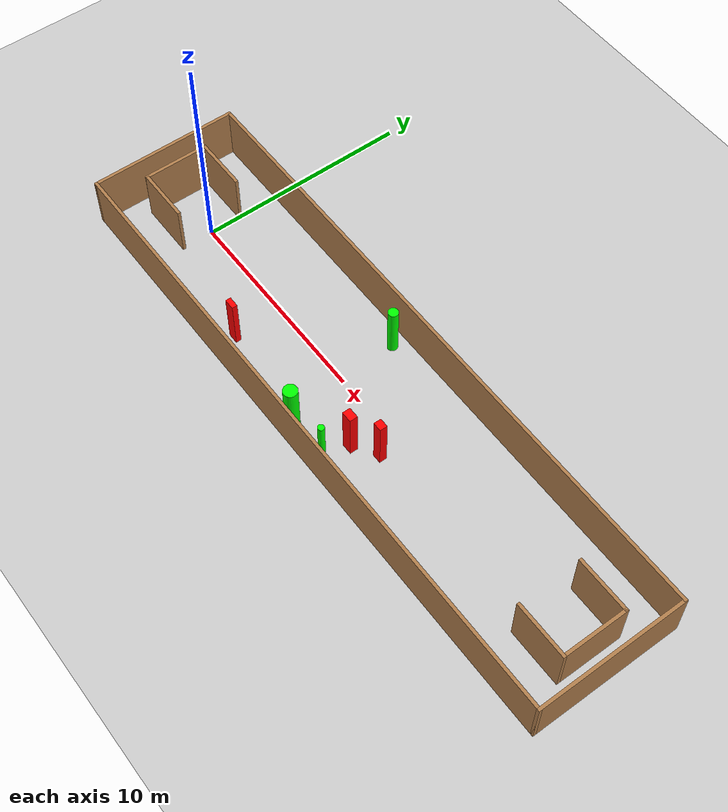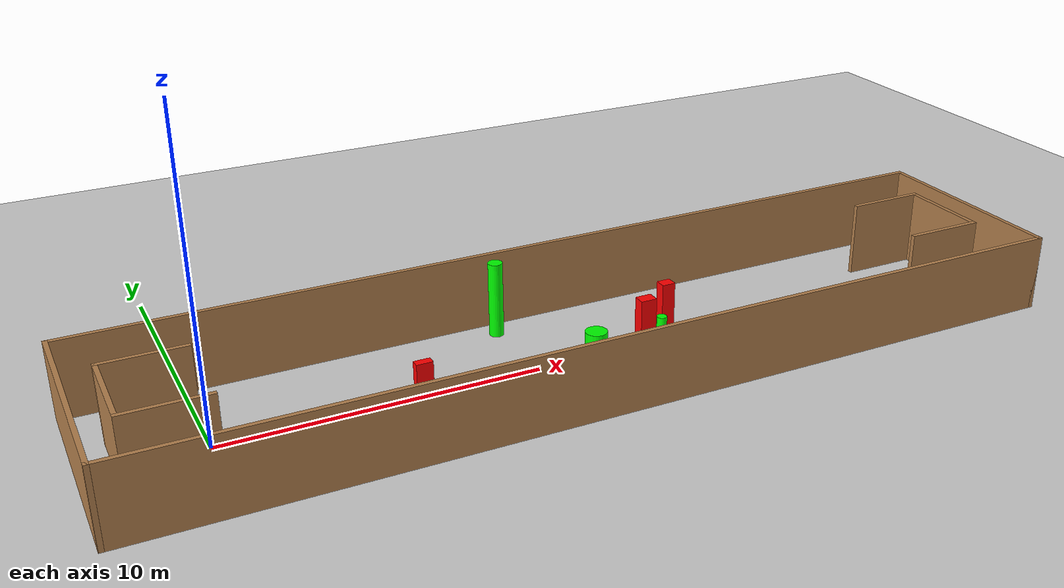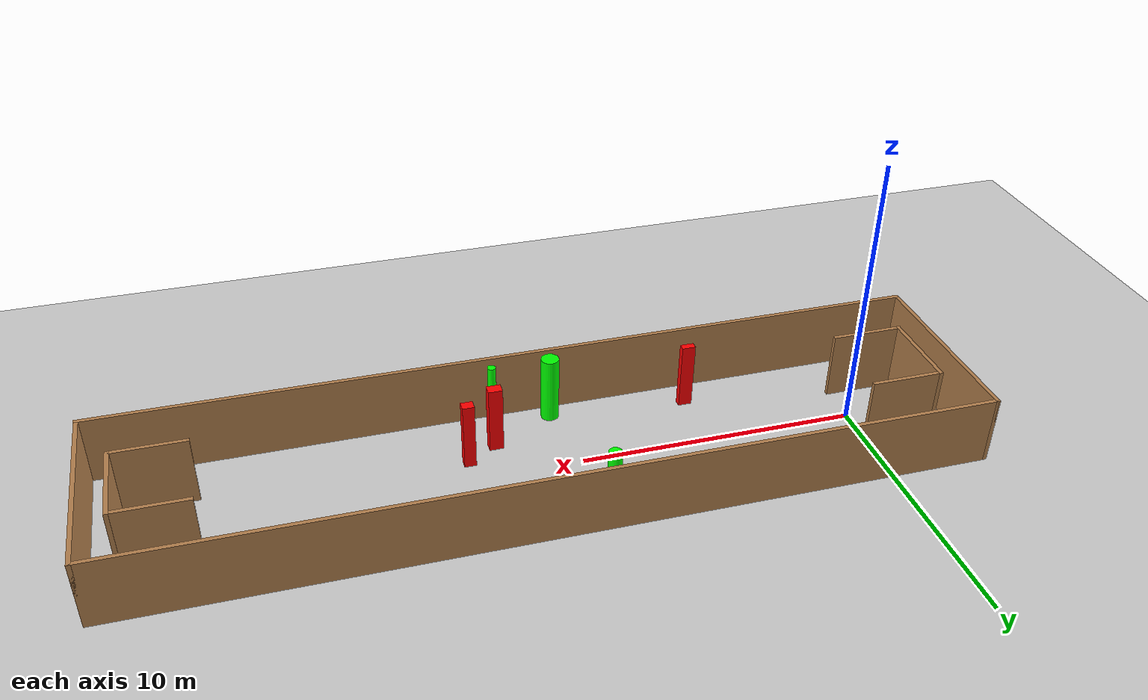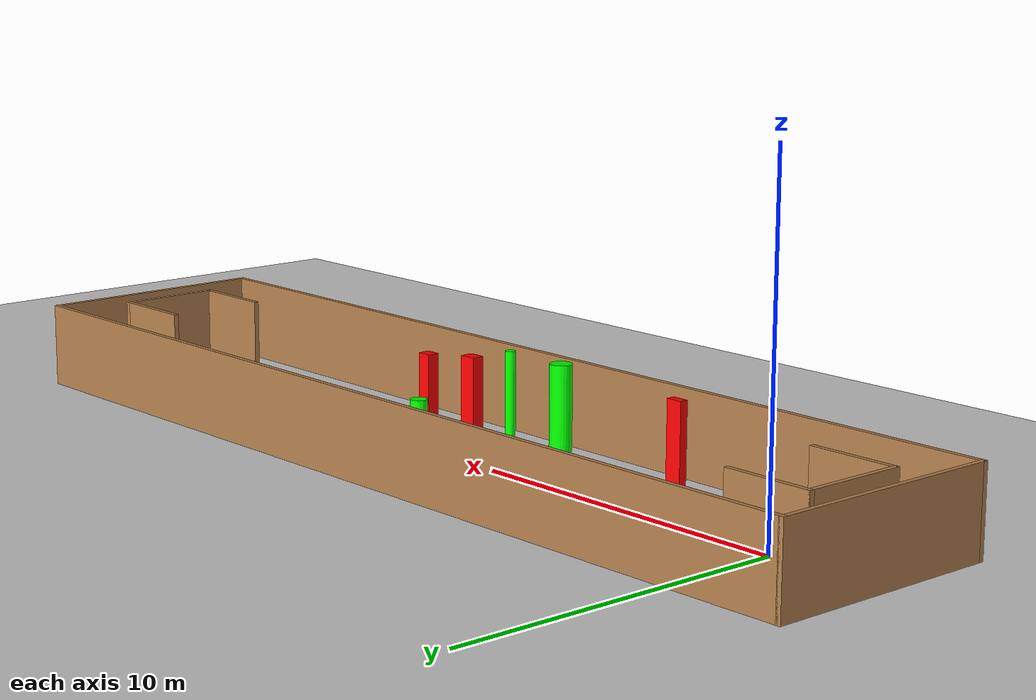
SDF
<sdf version="1.7">
 <world name="default">
  <light name="sun" type="directional">
   <pose>0 0 10 0 -0 0</pose>
   <diffuse>0.8 0.8 0.8 1</diffuse>
   <specular>0.2 0.2 0.2 1</specular>
   <attenuation>
    <range>1000</range>
    <constant>0.9</constant>
    <linear>0.01</linear>
    <quadratic>0.001</quadratic>
   </attenuation>
   <direction>-0.5 0.1 -0.9</direction>
   <spot><inner_angle>0</inner_angle><outer_angle>0</outer_angle><falloff>0</falloff></spot>
  </light>
  <model name="ground_plane">
   <static>1</static>
   <link name="link">
    <collision name="collision">
     <geometry><plane><normal>0 0 1</normal><size>100 100</size></plane></geometry>
     <surface>
      <contact><collide_bitmask>65535</collide_bitmask></contact>
      <friction><ode><mu>100</mu><mu2>50</mu2></ode></friction>
     </surface>
    </collision>
    <visual name="visual">
     <cast_shadows>0</cast_shadows>
     <geometry><plane><normal>0 0 1</normal><size>100 100</size></plane></geometry>
     <material>
      <script><uri>file://media/materials/scripts/gazebo.material</uri><name>Gazebo/Grey</name></script>
     </material>
    </visual>
   </link>
  </model>
  <gravity>0 0 -9.8</gravity>
  <magnetic_field>6e-06 2.3e-05 -4.2e-05</magnetic_field>
  <atmosphere type="adiabatic"/>
  <physics type="ode">
   <max_step_size>0.001</max_step_size>
   <real_time_factor>1</real_time_factor>
   <real_time_update_rate>1000</real_time_update_rate>
  </physics>
  <scene><ambient>0.4 0.4 0.4 1</ambient><background>0.7 0.7 0.7 1</background><shadows>1</shadows></scene>
  <spherical_coordinates>
   <surface_model>EARTH_WGS84</surface_model>
   <latitude_deg>0</latitude_deg>
   <longitude_deg>0</longitude_deg>
   <elevation>0</elevation>
   <heading_deg>0</heading_deg>
  </spherical_coordinates>
  <model name="my_base_walls">
   <link name="Wall_0">
    <collision name="Wall_0_Collision">
     <geometry><box><size>7.15 0.15 2.5</size></box></geometry>
     <pose>0 0 1.25 0 -0 0</pose>
    </collision>
    <visual name="Wall_0_Visual">
     <pose>0 0 1.25 0 -0 0</pose>
     <geometry><box><size>7.15 0.15 2.5</size></box></geometry>
     <material>
      <script><uri>file://media/materials/scripts/gazebo.material</uri><name>Gazebo/Wood</name></script>
      <ambient>1 1 1 1</ambient>
     </material>
     <meta><layer>0</layer></meta>
    </visual>
    <pose>-15 0 0 0 -0 1.5708</pose>
   </link>
   <link name="Wall_10">
    <collision name="Wall_10_Collision">
     <geometry><box><size>2.65 0.15 2.5</size></box></geometry>
     <pose>0 0 1.25 0 -0 0</pose>
    </collision>
    <visual name="Wall_10_Visual">
     <pose>0 0 1.25 0 -0 0</pose>
     <geometry><box><size>2.65 0.15 2.5</size></box></geometry>
     <material>
      <script><uri>file://media/materials/scripts/gazebo.material</uri><name>Gazebo/Wood</name></script>
      <ambient>1 1 1 1</ambient>
     </material>
     <meta><layer>0</layer></meta>
    </visual>
    <pose>-12.75 -1.5 0 0 -0 0</pose>
   </link>
   <link name="Wall_12">
    <collision name="Wall_12_Collision">
     <geometry><box><size>2.65 0.15 2.5</size></box></geometry>
     <pose>0 0 1.25 0 -0 0</pose>
    </collision>
    <visual name="Wall_12_Visual">
     <pose>0 0 1.25 0 -0 0</pose>
     <geometry><box><size>2.65 0.15 2.5</size></box></geometry>
     <material>
      <script><uri>file://media/materials/scripts/gazebo.material</uri><name>Gazebo/Wood</name></script>
      <ambient>1 1 1 1</ambient>
     </material>
     <meta><layer>0</layer></meta>
    </visual>
    <pose>-12.75 1.5 0 0 -0 0</pose>
   </link>
   <link name="Wall_14">
    <collision name="Wall_14_Collision">
     <geometry><box><size>3.15 0.15 2.5</size></box></geometry>
     <pose>0 0 1.25 0 -0 0</pose>
    </collision>
    <visual name="Wall_14_Visual">
     <pose>0 0 1.25 0 -0 0</pose>
     <geometry><box><size>3.15 0.15 2.5</size></box></geometry>
     <material>
      <script><uri>file://media/materials/scripts/gazebo.material</uri><name>Gazebo/Wood</name></script>
      <ambient>1 1 1 1</ambient>
     </material>
     <meta><layer>0</layer></meta>
    </visual>
    <pose>14 0 0 0 -0 -1.5708</pose>
   </link>
   <link name="Wall_15">
    <collision name="Wall_15_Collision">
     <geometry><box><size>2.65 0.15 2.5</size></box></geometry>
     <pose>0 0 1.25 0 -0 0</pose>
    </collision>
    <visual name="Wall_15_Visual">
     <pose>0 0 1.25 0 -0 0</pose>
     <geometry><box><size>2.65 0.15 2.5</size></box></geometry>
     <material>
      <script><uri>file://media/materials/scripts/gazebo.material</uri><name>Gazebo/Wood</name></script>
      <ambient>1 1 1 1</ambient>
     </material>
     <meta><layer>0</layer></meta>
    </visual>
    <pose>12.75 -1.5 0 0 -0 3.14159</pose>
   </link>
   <link name="Wall_17">
    <collision name="Wall_17_Collision">
     <geometry><box><size>2.65 0.15 2.5</size></box></geometry>
     <pose>0 0 1.25 0 -0 0</pose>
    </collision>
    <visual name="Wall_17_Visual">
     <pose>0 0 1.25 0 -0 0</pose>
     <geometry><box><size>2.65 0.15 2.5</size></box></geometry>
     <material>
      <script><uri>file://media/materials/scripts/gazebo.material</uri><name>Gazebo/Wood</name></script>
      <ambient>1 1 1 1</ambient>
     </material>
     <meta><layer>0</layer></meta>
    </visual>
    <pose>12.75 1.5 0 0 -0 3.14159</pose>
   </link>
   <link name="Wall_2">
    <collision name="Wall_2_Collision">
     <geometry><box><size>30.15 0.15 2.5</size></box></geometry>
     <pose>0 0 1.25 0 -0 0</pose>
    </collision>
    <visual name="Wall_2_Visual">
     <pose>0 0 1.25 0 -0 0</pose>
     <geometry><box><size>30.15 0.15 2.5</size></box></geometry>
     <material>
      <script><uri>file://media/materials/scripts/gazebo.material</uri><name>Gazebo/Wood</name></script>
      <ambient>1 1 1 1</ambient>
     </material>
     <meta><layer>0</layer></meta>
    </visual>
    <pose>-0 -3.5 0 0 -0 0</pose>
   </link>
   <link name="Wall_4">
    <collision name="Wall_4_Collision">
     <geometry><box><size>30.15 0.15 2.5</size></box></geometry>
     <pose>0 0 1.25 0 -0 0</pose>
    </collision>
    <visual name="Wall_4_Visual">
     <pose>0 0 1.25 0 -0 0</pose>
     <geometry><box><size>30.15 0.15 2.5</size></box></geometry>
     <material>
      <script><uri>file://media/materials/scripts/gazebo.material</uri><name>Gazebo/Wood</name></script>
      <ambient>1 1 1 1</ambient>
     </material>
     <meta><layer>0</layer></meta>
    </visual>
    <pose>-0 3.5 0 0 -0 0</pose>
   </link>
   <link name="Wall_6">
    <collision name="Wall_6_Collision">
     <geometry><box><size>7.15 0.15 2.5</size></box></geometry>
     <pose>0 0 1.25 0 -0 0</pose>
    </collision>
    <visual name="Wall_6_Visual">
     <pose>0 0 1.25 0 -0 0</pose>
     <geometry><box><size>7.15 0.15 2.5</size></box></geometry>
     <material>
      <script><uri>file://media/materials/scripts/gazebo.material</uri><name>Gazebo/Wood</name></script>
      <ambient>1 1 1 1</ambient>
     </material>
     <meta><layer>0</layer></meta>
    </visual>
    <pose>15 0 0 0 -0 -1.5708</pose>
   </link>
   <link name="Wall_9">
    <collision name="Wall_9_Collision">
     <geometry><box><size>3.15 0.15 2.5</size></box></geometry>
     <pose>0 0 1.25 0 -0 0</pose>
    </collision>
    <visual name="Wall_9_Visual">
     <pose>0 0 1.25 0 -0 0</pose>
     <geometry><box><size>3.15 0.15 2.5</size></box></geometry>
     <material>
      <script><uri>file://media/materials/scripts/gazebo.material</uri><name>Gazebo/Wood</name></script>
      <ambient>1 1 1 1</ambient>
     </material>
     <meta><layer>0</layer></meta>
    </visual>
    <pose>-14 0 0 0 -0 -1.5708</pose>
   </link>
   <static>1</static>
   <pose>11.5 0 0 0 -0 0</pose>
  </model>
  <model name="cylinder1">
   <static>1</static>
   <link name="link">
    <inertial>
     <mass>1</mass>
     <inertia><ixx>0.5</ixx><ixy>0</ixy><ixz>0</ixz><iyy>0.5</iyy><iyz>0</iyz><izz>1</izz></inertia>
    </inertial>
    <collision name="collision">
     <geometry><cylinder><radius>0.32394484222772535</radius><length>2.5</length></cylinder></geometry>
    </collision>
    <visual name="visual">
     <geometry><cylinder><radius>0.32394484222772535</radius><length>2.5</length></cylinder></geometry>
     <material>
      <ambient>0 1 0 1</ambient>
      <diffuse>0 1 0 1</diffuse>
      <specular>0.1 0.1 0.1 1</specular>
      <emissive>0 0 0 0</emissive>
     </material>
    </visual>
   </link>
   <pose>10.411848347512098 -2.8873621240261094 1.25 0 0 0</pose>
  </model>
  <model name="cylinder2">
   <static>1</static>
   <link name="link">
    <inertial>
     <mass>1</mass>
     <inertia><ixx>0.5</ixx><ixy>0</ixy><ixz>0</ixz><iyy>0.5</iyy><iyz>0</iyz><izz>1</izz></inertia>
    </inertial>
    <collision name="collision">
     <geometry><cylinder><radius>0.23336079579701313</radius><length>2.5</length></cylinder></geometry>
    </collision>
    <visual name="visual">
     <geometry><cylinder><radius>0.23336079579701313</radius><length>2.5</length></cylinder></geometry>
     <material>
      <ambient>0 1 0 1</ambient>
      <diffuse>0 1 0 1</diffuse>
      <specular>0.1 0.1 0.1 1</specular>
      <emissive>0 0 0 0</emissive>
     </material>
    </visual>
   </link>
   <pose>9.803560188652778 2.7450316573295224 1.25 0 0 0</pose>
  </model>
  <model name="cylinder3">
   <static>1</static>
   <link name="link">
    <inertial>
     <mass>1</mass>
     <inertia><ixx>0.5</ixx><ixy>0</ixy><ixz>0</ixz><iyy>0.5</iyy><iyz>0</iyz><izz>1</izz></inertia>
    </inertial>
    <collision name="collision">
     <geometry><cylinder><radius>0.15042291939759858</radius><length>2.5</length></cylinder></geometry>
    </collision>
    <visual name="visual">
     <geometry><cylinder><radius>0.15042291939759858</radius><length>2.5</length></cylinder></geometry>
     <material>
      <ambient>0 1 0 1</ambient>
      <diffuse>0 1 0 1</diffuse>
      <specular>0.1 0.1 0.1 1</specular>
      <emissive>0 0 0 0</emissive>
     </material>
    </visual>
   </link>
   <pose>12.538475912986886 -2.903745305472203 1.25 0 0 0</pose>
  </model>
  <model name="box1">
   <static>1</static>
   <link name="link">
    <inertial>
     <mass>1</mass>
     <inertia><ixx>0.083</ixx><ixy>0</ixy><ixz>0</ixz><iyy>0.083</iyy><iyz>0</iyz><izz>0.083</izz></inertia>
    </inertial>
    <collision name="collision">
     <geometry><box><size>0.5075026918835108 0.3760469227843894 2.5</size></box></geometry>
    </collision>
    <visual name="visual">
     <geometry><box><size>0.5075026918835108 0.3760469227843894 2.5</size></box></geometry>
     <material>
      <ambient>1 0 0 1</ambient>
      <diffuse>1 0 0 1</diffuse>
      <specular>0.1 0.1 0.1 1</specular>
      <emissive>0 0 0 0</emissive>
     </material>
    </visual>
    <sensor name="my_contact" type="contact">
     <contact><collision>box_collision</collision><topic>__default_topic__</topic></contact>
    </sensor>
   </link>
   <pose>12.743502701798466 -1.643583005271442 1.25 0 0 0</pose>
  </model>
  <model name="box2">
   <static>1</static>
   <link name="link">
    <inertial>
     <mass>1</mass>
     <inertia><ixx>0.083</ixx><ixy>0</ixy><ixz>0</ixz><iyy>0.083</iyy><iyz>0</iyz><izz>0.083</izz></inertia>
    </inertial>
    <collision name="collision">
     <geometry><box><size>0.4254139717257275 0.3515726860320922 2.5</size></box></geometry>
    </collision>
    <visual name="visual">
     <geometry><box><size>0.4254139717257275 0.3515726860320922 2.5</size></box></geometry>
     <material>
      <ambient>1 0 0 1</ambient>
      <diffuse>1 0 0 1</diffuse>
      <specular>0.1 0.1 0.1 1</specular>
      <emissive>0 0 0 0</emissive>
     </material>
    </visual>
    <sensor name="my_contact" type="contact">
     <contact><collision>box_collision</collision><topic>__default_topic__</topic></contact>
    </sensor>
   </link>
   <pose>13.83752069418764 -0.95262081277781 1.25 0 0 0</pose>
  </model>
  <model name="box3">
   <static>1</static>
   <link name="link">
    <inertial>
     <mass>1</mass>
     <inertia><ixx>0.083</ixx><ixy>0</ixy><ixz>0</ixz><iyy>0.083</iyy><iyz>0</iyz><izz>0.083</izz></inertia>
    </inertial>
    <collision name="collision">
     <geometry><box><size>0.4958925539617933 0.2506095315019079 2.5</size></box></geometry>
    </collision>
    <visual name="visual">
     <geometry><box><size>0.4958925539617933 0.2506095315019079 2.5</size></box></geometry>
     <material>
      <ambient>1 0 0 1</ambient>
      <diffuse>1 0 0 1</diffuse>
      <specular>0.1 0.1 0.1 1</specular>
      <emissive>0 0 0 0</emissive>
     </material>
    </visual>
    <sensor name="my_contact" type="contact">
     <contact><collision>box_collision</collision><topic>__default_topic__</topic></contact>
    </sensor>
   </link>
   <pose>5.412044874161493 -2.3623137355933688 1.25 0 0 0</pose>
  </model>
 </world>
</sdf>
